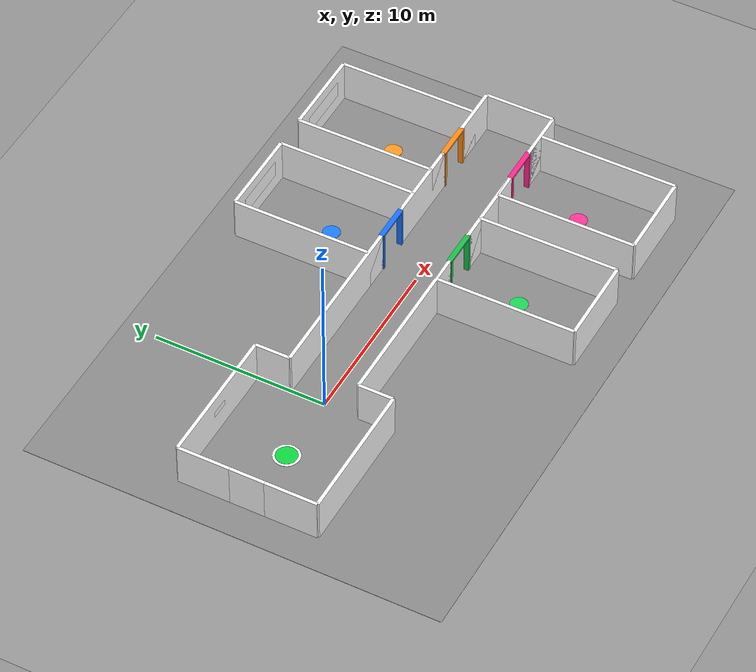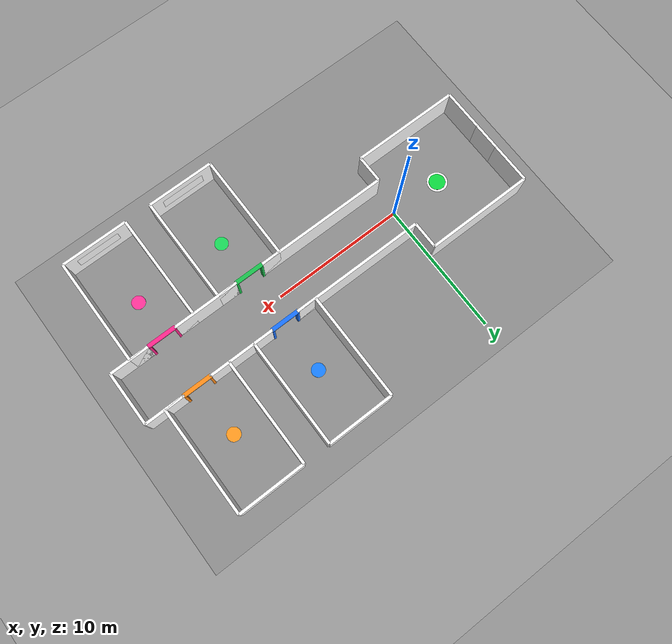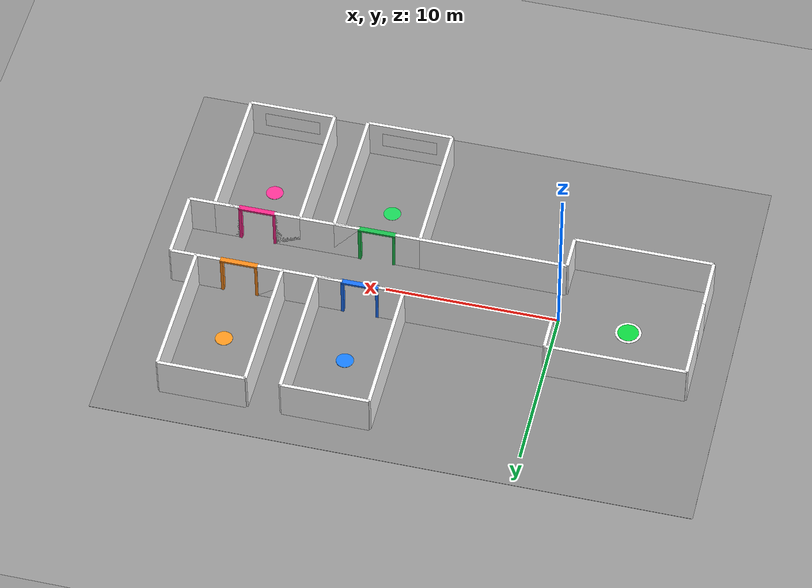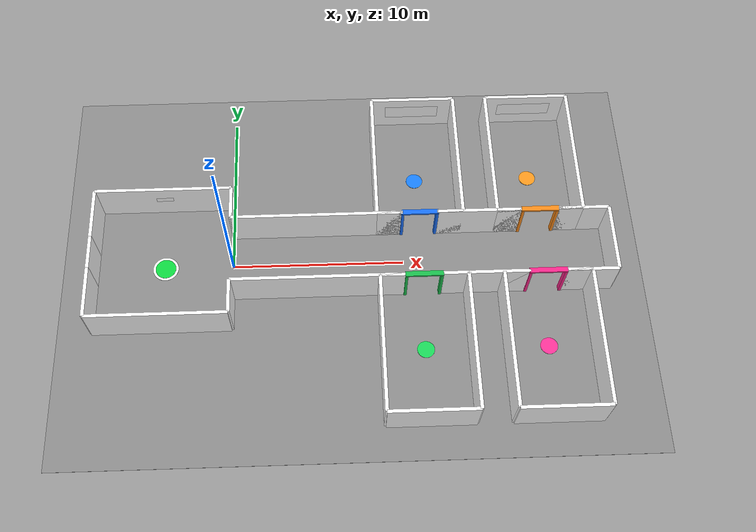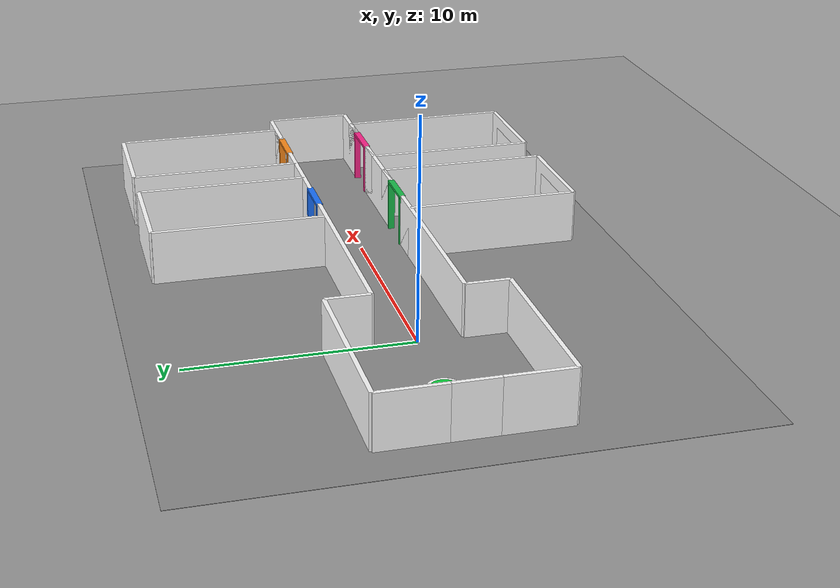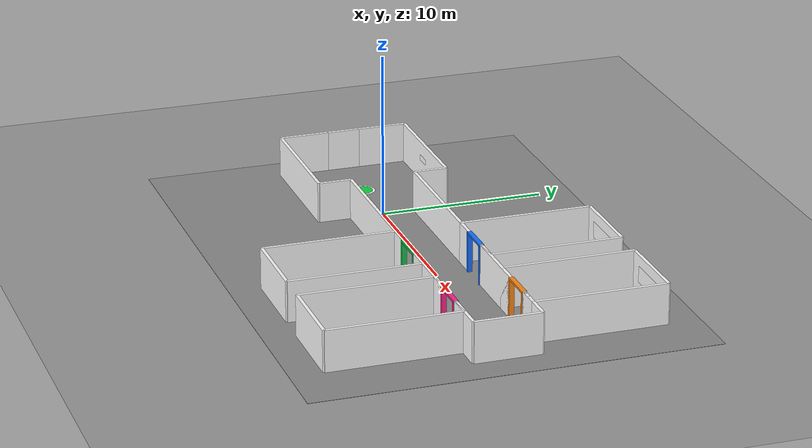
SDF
<sdf version="1.9">
 <world name="default">
  <model name="ground_plane">
   <static>1</static>
   <link name="link">
    <collision name="collision">
     <geometry><plane><normal>0 0 1</normal><size>100 100</size></plane></geometry>
     <surface>
      <contact><collide_bitmask>65535</collide_bitmask></contact>
      <friction><ode><mu>100</mu><mu2>50</mu2></ode></friction>
     </surface>
    </collision>
    <visual name="visual">
     <cast_shadows>0</cast_shadows>
     <geometry><plane><normal>0 0 1</normal><size>100 100</size></plane></geometry>
     <material><ambient>0.6 0.6 0.6 1</ambient><diffuse>0.6 0.6 0.6 1</diffuse></material>
    </visual>
   </link>
  </model>
  <model name="corridor_rooms">
   <static>true</static>
   <link name="link">
    <collision name="floor_col">
     <pose>7.0 0 0.01 0 0 0</pose>
     <geometry><box><size>34.0 24.0 0.02</size></box></geometry>
    </collision>
    <visual name="floor_vis">
     <pose>7.0 0 0.01 0 0 0</pose>
     <geometry><box><size>34.0 24.0 0.02</size></box></geometry>
     <material><ambient>0.55 0.55 0.55 1</ambient><diffuse>0.55 0.55 0.55 1</diffuse></material>
    </visual>
    <collision name="lobby_north_col">
     <pose>-4.0 4.0 1.25 0 0 0.0</pose>
     <geometry><box><size>8.0 0.2 2.5</size></box></geometry>
    </collision>
    <visual name="lobby_north_vis">
     <pose>-4.0 4.0 1.25 0 0 0.0</pose>
     <geometry><box><size>8.0 0.2 2.5</size></box></geometry>
     <material>
      <ambient>1 1 1 1</ambient>
      <diffuse>1 1 1 1</diffuse>
      <pbr>
       <metal>
        <albedo_map>materials/textures/wall.png</albedo_map>
        <metalness>0</metalness>
        <roughness>1</roughness>
       </metal>
      </pbr>
     </material>
    </visual>
    <collision name="lobby_south_col">
     <pose>-4.0 -4.0 1.25 0 0 0.0</pose>
     <geometry><box><size>8.0 0.2 2.5</size></box></geometry>
    </collision>
    <visual name="lobby_south_vis">
     <pose>-4.0 -4.0 1.25 0 0 0.0</pose>
     <geometry><box><size>8.0 0.2 2.5</size></box></geometry>
     <material>
      <ambient>1 1 1 1</ambient>
      <diffuse>1 1 1 1</diffuse>
      <pbr>
       <metal>
        <albedo_map>materials/textures/wall.png</albedo_map>
        <metalness>0</metalness>
        <roughness>1</roughness>
       </metal>
      </pbr>
     </material>
    </visual>
    <collision name="lobby_west_a_col">
     <pose>-8.0 2.5 1.25 0 0 0.0</pose>
     <geometry><box><size>0.2 3.0 2.5</size></box></geometry>
    </collision>
    <visual name="lobby_west_a_vis">
     <pose>-8.0 2.5 1.25 0 0 0.0</pose>
     <geometry><box><size>0.2 3.0 2.5</size></box></geometry>
     <material>
      <ambient>1 1 1 1</ambient>
      <diffuse>1 1 1 1</diffuse>
      <pbr>
       <metal>
        <albedo_map>materials/textures/wall.png</albedo_map>
        <metalness>0</metalness>
        <roughness>1</roughness>
       </metal>
      </pbr>
     </material>
    </visual>
    <collision name="lobby_west_b_col">
     <pose>-8.0 -2.5 1.25 0 0 0.0</pose>
     <geometry><box><size>0.2 3.0 2.5</size></box></geometry>
    </collision>
    <visual name="lobby_west_b_vis">
     <pose>-8.0 -2.5 1.25 0 0 0.0</pose>
     <geometry><box><size>0.2 3.0 2.5</size></box></geometry>
     <material>
      <ambient>1 1 1 1</ambient>
      <diffuse>1 1 1 1</diffuse>
      <pbr>
       <metal>
        <albedo_map>materials/textures/wall.png</albedo_map>
        <metalness>0</metalness>
        <roughness>1</roughness>
       </metal>
      </pbr>
     </material>
    </visual>
    <collision name="lobby_west_entrance_col">
     <pose>-8.0 0.0 1.25 0 0 0.0</pose>
     <geometry><box><size>0.2 2.0 2.5</size></box></geometry>
    </collision>
    <visual name="lobby_west_entrance_vis">
     <pose>-8.0 0.0 1.25 0 0 0.0</pose>
     <geometry><box><size>0.2 2.0 2.5</size></box></geometry>
     <material>
      <ambient>1 1 1 1</ambient>
      <diffuse>1 1 1 1</diffuse>
      <pbr>
       <metal>
        <albedo_map>materials/textures/wall.png</albedo_map>
        <metalness>0</metalness>
        <roughness>1</roughness>
       </metal>
      </pbr>
     </material>
    </visual>
    <collision name="lobby_east_a_col">
     <pose>0.0 3.0 1.25 0 0 0.0</pose>
     <geometry><box><size>0.2 2.0 2.5</size></box></geometry>
    </collision>
    <visual name="lobby_east_a_vis">
     <pose>0.0 3.0 1.25 0 0 0.0</pose>
     <geometry><box><size>0.2 2.0 2.5</size></box></geometry>
     <material>
      <ambient>1 1 1 1</ambient>
      <diffuse>1 1 1 1</diffuse>
      <pbr>
       <metal>
        <albedo_map>materials/textures/wall.png</albedo_map>
        <metalness>0</metalness>
        <roughness>1</roughness>
       </metal>
      </pbr>
     </material>
    </visual>
    <collision name="lobby_east_b_col">
     <pose>0.0 -3.0 1.25 0 0 0.0</pose>
     <geometry><box><size>0.2 2.0 2.5</size></box></geometry>
    </collision>
    <visual name="lobby_east_b_vis">
     <pose>0.0 -3.0 1.25 0 0 0.0</pose>
     <geometry><box><size>0.2 2.0 2.5</size></box></geometry>
     <material>
      <ambient>1 1 1 1</ambient>
      <diffuse>1 1 1 1</diffuse>
      <pbr>
       <metal>
        <albedo_map>materials/textures/wall.png</albedo_map>
        <metalness>0</metalness>
        <roughness>1</roughness>
       </metal>
      </pbr>
     </material>
    </visual>
    <collision name="corridor_north_0_col">
     <pose>5.0 2.0 1.25 0 0 0.0</pose>
     <geometry><box><size>10.0 0.2 2.5</size></box></geometry>
    </collision>
    <visual name="corridor_north_0_vis">
     <pose>5.0 2.0 1.25 0 0 0.0</pose>
     <geometry><box><size>10.0 0.2 2.5</size></box></geometry>
     <material>
      <ambient>1 1 1 1</ambient>
      <diffuse>1 1 1 1</diffuse>
      <pbr>
       <metal>
        <albedo_map>materials/textures/wall.png</albedo_map>
        <metalness>0</metalness>
        <roughness>1</roughness>
       </metal>
      </pbr>
     </material>
    </visual>
    <collision name="corridor_north_1_col">
     <pose>14.5 2.0 1.25 0 0 0.0</pose>
     <geometry><box><size>5.0 0.2 2.5</size></box></geometry>
    </collision>
    <visual name="corridor_north_1_vis">
     <pose>14.5 2.0 1.25 0 0 0.0</pose>
     <geometry><box><size>5.0 0.2 2.5</size></box></geometry>
     <material>
      <ambient>1 1 1 1</ambient>
      <diffuse>1 1 1 1</diffuse>
      <pbr>
       <metal>
        <albedo_map>materials/textures/wall.png</albedo_map>
        <metalness>0</metalness>
        <roughness>1</roughness>
       </metal>
      </pbr>
     </material>
    </visual>
    <collision name="corridor_north_2_col">
     <pose>20.5 2.0 1.25 0 0 0.0</pose>
     <geometry><box><size>3.0 0.2 2.5</size></box></geometry>
    </collision>
    <visual name="corridor_north_2_vis">
     <pose>20.5 2.0 1.25 0 0 0.0</pose>
     <geometry><box><size>3.0 0.2 2.5</size></box></geometry>
     <material>
      <ambient>1 1 1 1</ambient>
      <diffuse>1 1 1 1</diffuse>
      <pbr>
       <metal>
        <albedo_map>materials/textures/wall.png</albedo_map>
        <metalness>0</metalness>
        <roughness>1</roughness>
       </metal>
      </pbr>
     </material>
    </visual>
    <collision name="corridor_south_0_col">
     <pose>5.0 -2.0 1.25 0 0 0.0</pose>
     <geometry><box><size>10.0 0.2 2.5</size></box></geometry>
    </collision>
    <visual name="corridor_south_0_vis">
     <pose>5.0 -2.0 1.25 0 0 0.0</pose>
     <geometry><box><size>10.0 0.2 2.5</size></box></geometry>
     <material>
      <ambient>1 1 1 1</ambient>
      <diffuse>1 1 1 1</diffuse>
      <pbr>
       <metal>
        <albedo_map>materials/textures/wall.png</albedo_map>
        <metalness>0</metalness>
        <roughness>1</roughness>
       </metal>
      </pbr>
     </material>
    </visual>
    <collision name="corridor_south_1_col">
     <pose>14.5 -2.0 1.25 0 0 0.0</pose>
     <geometry><box><size>5.0 0.2 2.5</size></box></geometry>
    </collision>
    <visual name="corridor_south_1_vis">
     <pose>14.5 -2.0 1.25 0 0 0.0</pose>
     <geometry><box><size>5.0 0.2 2.5</size></box></geometry>
     <material>
      <ambient>1 1 1 1</ambient>
      <diffuse>1 1 1 1</diffuse>
      <pbr>
       <metal>
        <albedo_map>materials/textures/wall.png</albedo_map>
        <metalness>0</metalness>
        <roughness>1</roughness>
       </metal>
      </pbr>
     </material>
    </visual>
    <collision name="corridor_south_2_col">
     <pose>20.5 -2.0 1.25 0 0 0.0</pose>
     <geometry><box><size>3.0 0.2 2.5</size></box></geometry>
    </collision>
    <visual name="corridor_south_2_vis">
     <pose>20.5 -2.0 1.25 0 0 0.0</pose>
     <geometry><box><size>3.0 0.2 2.5</size></box></geometry>
     <material>
      <ambient>1 1 1 1</ambient>
      <diffuse>1 1 1 1</diffuse>
      <pbr>
       <metal>
        <albedo_map>materials/textures/wall.png</albedo_map>
        <metalness>0</metalness>
        <roughness>1</roughness>
       </metal>
      </pbr>
     </material>
    </visual>
    <collision name="corridor_east_end_col">
     <pose>22.0 0.0 1.25 0 0 0.0</pose>
     <geometry><box><size>0.2 4.0 2.5</size></box></geometry>
    </collision>
    <visual name="corridor_east_end_vis">
     <pose>22.0 0.0 1.25 0 0 0.0</pose>
     <geometry><box><size>0.2 4.0 2.5</size></box></geometry>
     <material>
      <ambient>1 1 1 1</ambient>
      <diffuse>1 1 1 1</diffuse>
      <pbr>
       <metal>
        <albedo_map>materials/textures/wall.png</albedo_map>
        <metalness>0</metalness>
        <roughness>1</roughness>
       </metal>
      </pbr>
     </material>
    </visual>
    <collision name="room_A_doorwall_a_col">
     <pose>9.25 2.0 1.25 0 0 0.0</pose>
     <geometry><box><size>1.5 0.2 2.5</size></box></geometry>
    </collision>
    <visual name="room_A_doorwall_a_vis">
     <pose>9.25 2.0 1.25 0 0 0.0</pose>
     <geometry><box><size>1.5 0.2 2.5</size></box></geometry>
     <material>
      <ambient>1 1 1 1</ambient>
      <diffuse>1 1 1 1</diffuse>
      <pbr>
       <metal>
        <albedo_map>materials/textures/wall.png</albedo_map>
        <metalness>0</metalness>
        <roughness>1</roughness>
       </metal>
      </pbr>
     </material>
    </visual>
    <collision name="room_A_doorwall_b_col">
     <pose>12.75 2.0 1.25 0 0 0.0</pose>
     <geometry><box><size>1.5 0.2 2.5</size></box></geometry>
    </collision>
    <visual name="room_A_doorwall_b_vis">
     <pose>12.75 2.0 1.25 0 0 0.0</pose>
     <geometry><box><size>1.5 0.2 2.5</size></box></geometry>
     <material>
      <ambient>1 1 1 1</ambient>
      <diffuse>1 1 1 1</diffuse>
      <pbr>
       <metal>
        <albedo_map>materials/textures/wall.png</albedo_map>
        <metalness>0</metalness>
        <roughness>1</roughness>
       </metal>
      </pbr>
     </material>
    </visual>
    <collision name="room_A_backwall_col">
     <pose>11.0 10.0 1.25 0 0 0.0</pose>
     <geometry><box><size>5.0 0.2 2.5</size></box></geometry>
    </collision>
    <visual name="room_A_backwall_vis">
     <pose>11.0 10.0 1.25 0 0 0.0</pose>
     <geometry><box><size>5.0 0.2 2.5</size></box></geometry>
     <material>
      <ambient>1 1 1 1</ambient>
      <diffuse>1 1 1 1</diffuse>
      <pbr>
       <metal>
        <albedo_map>materials/textures/wall.png</albedo_map>
        <metalness>0</metalness>
        <roughness>1</roughness>
       </metal>
      </pbr>
     </material>
    </visual>
    <collision name="room_A_sidewall_1_col">
     <pose>8.5 6.0 1.25 0 0 0.0</pose>
     <geometry><box><size>0.2 8.0 2.5</size></box></geometry>
    </collision>
    <visual name="room_A_sidewall_1_vis">
     <pose>8.5 6.0 1.25 0 0 0.0</pose>
     <geometry><box><size>0.2 8.0 2.5</size></box></geometry>
     <material>
      <ambient>1 1 1 1</ambient>
      <diffuse>1 1 1 1</diffuse>
      <pbr>
       <metal>
        <albedo_map>materials/textures/wall.png</albedo_map>
        <metalness>0</metalness>
        <roughness>1</roughness>
       </metal>
      </pbr>
     </material>
    </visual>
    <collision name="room_A_sidewall_2_col">
     <pose>13.5 6.0 1.25 0 0 0.0</pose>
     <geometry><box><size>0.2 8.0 2.5</size></box></geometry>
    </collision>
    <visual name="room_A_sidewall_2_vis">
     <pose>13.5 6.0 1.25 0 0 0.0</pose>
     <geometry><box><size>0.2 8.0 2.5</size></box></geometry>
     <material>
      <ambient>1 1 1 1</ambient>
      <diffuse>1 1 1 1</diffuse>
      <pbr>
       <metal>
        <albedo_map>materials/textures/wall.png</albedo_map>
        <metalness>0</metalness>
        <roughness>1</roughness>
       </metal>
      </pbr>
     </material>
    </visual>
    <collision name="room_B_doorwall_a_col">
     <pose>9.25 -2.0 1.25 0 0 0.0</pose>
     <geometry><box><size>1.5 0.2 2.5</size></box></geometry>
    </collision>
    <visual name="room_B_doorwall_a_vis">
     <pose>9.25 -2.0 1.25 0 0 0.0</pose>
     <geometry><box><size>1.5 0.2 2.5</size></box></geometry>
     <material>
      <ambient>1 1 1 1</ambient>
      <diffuse>1 1 1 1</diffuse>
      <pbr>
       <metal>
        <albedo_map>materials/textures/wall.png</albedo_map>
        <metalness>0</metalness>
        <roughness>1</roughness>
       </metal>
      </pbr>
     </material>
    </visual>
    <collision name="room_B_doorwall_b_col">
     <pose>12.75 -2.0 1.25 0 0 0.0</pose>
     <geometry><box><size>1.5 0.2 2.5</size></box></geometry>
    </collision>
    <visual name="room_B_doorwall_b_vis">
     <pose>12.75 -2.0 1.25 0 0 0.0</pose>
     <geometry><box><size>1.5 0.2 2.5</size></box></geometry>
     <material>
      <ambient>1 1 1 1</ambient>
      <diffuse>1 1 1 1</diffuse>
      <pbr>
       <metal>
        <albedo_map>materials/textures/wall.png</albedo_map>
        <metalness>0</metalness>
        <roughness>1</roughness>
       </metal>
      </pbr>
     </material>
    </visual>
    <collision name="room_B_backwall_col">
     <pose>11.0 -10.0 1.25 0 0 0.0</pose>
     <geometry><box><size>5.0 0.2 2.5</size></box></geometry>
    </collision>
    <visual name="room_B_backwall_vis">
     <pose>11.0 -10.0 1.25 0 0 0.0</pose>
     <geometry><box><size>5.0 0.2 2.5</size></box></geometry>
     <material>
      <ambient>1 1 1 1</ambient>
      <diffuse>1 1 1 1</diffuse>
      <pbr>
       <metal>
        <albedo_map>materials/textures/wall.png</albedo_map>
        <metalness>0</metalness>
        <roughness>1</roughness>
       </metal>
      </pbr>
     </material>
    </visual>
    <collision name="room_B_sidewall_1_col">
     <pose>8.5 -6.0 1.25 0 0 0.0</pose>
     <geometry><box><size>0.2 8.0 2.5</size></box></geometry>
    </collision>
    <visual name="room_B_sidewall_1_vis">
     <pose>8.5 -6.0 1.25 0 0 0.0</pose>
     <geometry><box><size>0.2 8.0 2.5</size></box></geometry>
     <material>
      <ambient>1 1 1 1</ambient>
      <diffuse>1 1 1 1</diffuse>
      <pbr>
       <metal>
        <albedo_map>materials/textures/wall.png</albedo_map>
        <metalness>0</metalness>
        <roughness>1</roughness>
       </metal>
      </pbr>
     </material>
    </visual>
    <collision name="room_B_sidewall_2_col">
     <pose>13.5 -6.0 1.25 0 0 0.0</pose>
     <geometry><box><size>0.2 8.0 2.5</size></box></geometry>
    </collision>
    <visual name="room_B_sidewall_2_vis">
     <pose>13.5 -6.0 1.25 0 0 0.0</pose>
     <geometry><box><size>0.2 8.0 2.5</size></box></geometry>
     <material>
      <ambient>1 1 1 1</ambient>
      <diffuse>1 1 1 1</diffuse>
      <pbr>
       <metal>
        <albedo_map>materials/textures/wall.png</albedo_map>
        <metalness>0</metalness>
        <roughness>1</roughness>
       </metal>
      </pbr>
     </material>
    </visual>
    <collision name="room_C_doorwall_a_col">
     <pose>16.25 2.0 1.25 0 0 0.0</pose>
     <geometry><box><size>1.5 0.2 2.5</size></box></geometry>
    </collision>
    <visual name="room_C_doorwall_a_vis">
     <pose>16.25 2.0 1.25 0 0 0.0</pose>
     <geometry><box><size>1.5 0.2 2.5</size></box></geometry>
     <material>
      <ambient>1 1 1 1</ambient>
      <diffuse>1 1 1 1</diffuse>
      <pbr>
       <metal>
        <albedo_map>materials/textures/wall.png</albedo_map>
        <metalness>0</metalness>
        <roughness>1</roughness>
       </metal>
      </pbr>
     </material>
    </visual>
    <collision name="room_C_doorwall_b_col">
     <pose>19.75 2.0 1.25 0 0 0.0</pose>
     <geometry><box><size>1.5 0.2 2.5</size></box></geometry>
    </collision>
    <visual name="room_C_doorwall_b_vis">
     <pose>19.75 2.0 1.25 0 0 0.0</pose>
     <geometry><box><size>1.5 0.2 2.5</size></box></geometry>
     <material>
      <ambient>1 1 1 1</ambient>
      <diffuse>1 1 1 1</diffuse>
      <pbr>
       <metal>
        <albedo_map>materials/textures/wall.png</albedo_map>
        <metalness>0</metalness>
        <roughness>1</roughness>
       </metal>
      </pbr>
     </material>
    </visual>
    <collision name="room_C_backwall_col">
     <pose>18.0 10.0 1.25 0 0 0.0</pose>
     <geometry><box><size>5.0 0.2 2.5</size></box></geometry>
    </collision>
    <visual name="room_C_backwall_vis">
     <pose>18.0 10.0 1.25 0 0 0.0</pose>
     <geometry><box><size>5.0 0.2 2.5</size></box></geometry>
     <material>
      <ambient>1 1 1 1</ambient>
      <diffuse>1 1 1 1</diffuse>
      <pbr>
       <metal>
        <albedo_map>materials/textures/wall.png</albedo_map>
        <metalness>0</metalness>
        <roughness>1</roughness>
       </metal>
      </pbr>
     </material>
    </visual>
    <collision name="room_C_sidewall_1_col">
     <pose>15.5 6.0 1.25 0 0 0.0</pose>
     <geometry><box><size>0.2 8.0 2.5</size></box></geometry>
    </collision>
    <visual name="room_C_sidewall_1_vis">
     <pose>15.5 6.0 1.25 0 0 0.0</pose>
     <geometry><box><size>0.2 8.0 2.5</size></box></geometry>
     <material>
      <ambient>1 1 1 1</ambient>
      <diffuse>1 1 1 1</diffuse>
      <pbr>
       <metal>
        <albedo_map>materials/textures/wall.png</albedo_map>
        <metalness>0</metalness>
        <roughness>1</roughness>
       </metal>
      </pbr>
     </material>
    </visual>
    <collision name="room_C_sidewall_2_col">
     <pose>20.5 6.0 1.25 0 0 0.0</pose>
     <geometry><box><size>0.2 8.0 2.5</size></box></geometry>
    </collision>
    <visual name="room_C_sidewall_2_vis">
     <pose>20.5 6.0 1.25 0 0 0.0</pose>
     <geometry><box><size>0.2 8.0 2.5</size></box></geometry>
     <material>
      <ambient>1 1 1 1</ambient>
      <diffuse>1 1 1 1</diffuse>
      <pbr>
       <metal>
        <albedo_map>materials/textures/wall.png</albedo_map>
        <metalness>0</metalness>
        <roughness>1</roughness>
       </metal>
      </pbr>
     </material>
    </visual>
    <collision name="room_D_doorwall_a_col">
     <pose>16.25 -2.0 1.25 0 0 0.0</pose>
     <geometry><box><size>1.5 0.2 2.5</size></box></geometry>
    </collision>
    <visual name="room_D_doorwall_a_vis">
     <pose>16.25 -2.0 1.25 0 0 0.0</pose>
     <geometry><box><size>1.5 0.2 2.5</size></box></geometry>
     <material>
      <ambient>1 1 1 1</ambient>
      <diffuse>1 1 1 1</diffuse>
      <pbr>
       <metal>
        <albedo_map>materials/textures/wall.png</albedo_map>
        <metalness>0</metalness>
        <roughness>1</roughness>
       </metal>
      </pbr>
     </material>
    </visual>
    <collision name="room_D_doorwall_b_col">
     <pose>19.75 -2.0 1.25 0 0 0.0</pose>
     <geometry><box><size>1.5 0.2 2.5</size></box></geometry>
    </collision>
    <visual name="room_D_doorwall_b_vis">
     <pose>19.75 -2.0 1.25 0 0 0.0</pose>
     <geometry><box><size>1.5 0.2 2.5</size></box></geometry>
     <material>
      <ambient>1 1 1 1</ambient>
      <diffuse>1 1 1 1</diffuse>
      <pbr>
       <metal>
        <albedo_map>materials/textures/wall.png</albedo_map>
        <metalness>0</metalness>
        <roughness>1</roughness>
       </metal>
      </pbr>
     </material>
    </visual>
    <collision name="room_D_backwall_col">
     <pose>18.0 -10.0 1.25 0 0 0.0</pose>
     <geometry><box><size>5.0 0.2 2.5</size></box></geometry>
    </collision>
    <visual name="room_D_backwall_vis">
     <pose>18.0 -10.0 1.25 0 0 0.0</pose>
     <geometry><box><size>5.0 0.2 2.5</size></box></geometry>
     <material>
      <ambient>1 1 1 1</ambient>
      <diffuse>1 1 1 1</diffuse>
      <pbr>
       <metal>
        <albedo_map>materials/textures/wall.png</albedo_map>
        <metalness>0</metalness>
        <roughness>1</roughness>
       </metal>
      </pbr>
     </material>
    </visual>
    <collision name="room_D_sidewall_1_col">
     <pose>15.5 -6.0 1.25 0 0 0.0</pose>
     <geometry><box><size>0.2 8.0 2.5</size></box></geometry>
    </collision>
    <visual name="room_D_sidewall_1_vis">
     <pose>15.5 -6.0 1.25 0 0 0.0</pose>
     <geometry><box><size>0.2 8.0 2.5</size></box></geometry>
     <material>
      <ambient>1 1 1 1</ambient>
      <diffuse>1 1 1 1</diffuse>
      <pbr>
       <metal>
        <albedo_map>materials/textures/wall.png</albedo_map>
        <metalness>0</metalness>
        <roughness>1</roughness>
       </metal>
      </pbr>
     </material>
    </visual>
    <collision name="room_D_sidewall_2_col">
     <pose>20.5 -6.0 1.25 0 0 0.0</pose>
     <geometry><box><size>0.2 8.0 2.5</size></box></geometry>
    </collision>
    <visual name="room_D_sidewall_2_vis">
     <pose>20.5 -6.0 1.25 0 0 0.0</pose>
     <geometry><box><size>0.2 8.0 2.5</size></box></geometry>
     <material>
      <ambient>1 1 1 1</ambient>
      <diffuse>1 1 1 1</diffuse>
      <pbr>
       <metal>
        <albedo_map>materials/textures/wall.png</albedo_map>
        <metalness>0</metalness>
        <roughness>1</roughness>
       </metal>
      </pbr>
     </material>
    </visual>
    <visual name="plate_A_vis">
     <pose>11.0 9.89 1.375 1.5708 0 0.0</pose>
     <geometry><plane><size>3.25 1.0</size></plane></geometry>
     <material>
      <ambient>1 1 1 1</ambient>
      <diffuse>1 1 1 1</diffuse>
      <pbr>
       <metal>
        <albedo_map>materials/textures/sala_a.png</albedo_map>
        <metalness>0.0</metalness>
        <roughness>1.0</roughness>
       </metal>
      </pbr>
     </material>
    </visual>
    <visual name="plate_B_vis">
     <pose>11.0 -9.89 1.375 1.5708 0 3.14159265</pose>
     <geometry><plane><size>3.25 1.0</size></plane></geometry>
     <material>
      <ambient>1 1 1 1</ambient>
      <diffuse>1 1 1 1</diffuse>
      <pbr>
       <metal>
        <albedo_map>materials/textures/sala_b.png</albedo_map>
        <metalness>0.0</metalness>
        <roughness>1.0</roughness>
       </metal>
      </pbr>
     </material>
    </visual>
    <visual name="plate_C_vis">
     <pose>18.0 9.89 1.375 1.5708 0 0.0</pose>
     <geometry><plane><size>3.25 1.0</size></plane></geometry>
     <material>
      <ambient>1 1 1 1</ambient>
      <diffuse>1 1 1 1</diffuse>
      <pbr>
       <metal>
        <albedo_map>materials/textures/sala_c.png</albedo_map>
        <metalness>0.0</metalness>
        <roughness>1.0</roughness>
       </metal>
      </pbr>
     </material>
    </visual>
    <visual name="plate_D_vis">
     <pose>18.0 -9.89 1.375 1.5708 0 3.14159265</pose>
     <geometry><plane><size>3.25 1.0</size></plane></geometry>
     <material>
      <ambient>1 1 1 1</ambient>
      <diffuse>1 1 1 1</diffuse>
      <pbr>
       <metal>
        <albedo_map>materials/textures/sala_d.png</albedo_map>
        <metalness>0.0</metalness>
        <roughness>1.0</roughness>
       </metal>
      </pbr>
     </material>
    </visual>
   </link>
  </model>
  <model name="checkpoint_a">
   <static>true</static>
   <link name="link">
    <visual name="vis">
     <pose>11 5.6 0.02 0 0 0</pose>
     <geometry><cylinder><radius>0.5</radius><length>0.04</length></cylinder></geometry>
     <material>
      <ambient>0.10 0.45 1.00 1</ambient>
      <diffuse>0.10 0.50 1.00 1</diffuse>
      <emissive>0.05 0.22 0.55 1</emissive>
     </material>
    </visual>
   </link>
  </model>
  <model name="checkpoint_b">
   <static>true</static>
   <link name="link">
    <visual name="vis">
     <pose>11 -5.6 0.02 0 0 0</pose>
     <geometry><cylinder><radius>0.5</radius><length>0.04</length></cylinder></geometry>
     <material>
      <ambient>0.10 0.75 0.30 1</ambient>
      <diffuse>0.10 0.85 0.35 1</diffuse>
      <emissive>0.05 0.40 0.16 1</emissive>
     </material>
    </visual>
   </link>
  </model>
  <model name="checkpoint_c">
   <static>true</static>
   <link name="link">
    <visual name="vis">
     <pose>18 5.6 0.02 0 0 0</pose>
     <geometry><cylinder><radius>0.5</radius><length>0.04</length></cylinder></geometry>
     <material>
      <ambient>1.00 0.55 0.10 1</ambient>
      <diffuse>1.00 0.60 0.12 1</diffuse>
      <emissive>0.50 0.28 0.05 1</emissive>
     </material>
    </visual>
   </link>
  </model>
  <model name="checkpoint_d">
   <static>true</static>
   <link name="link">
    <visual name="vis">
     <pose>18 -5.6 0.02 0 0 0</pose>
     <geometry><cylinder><radius>0.5</radius><length>0.04</length></cylinder></geometry>
     <material>
      <ambient>1.00 0.15 0.55 1</ambient>
      <diffuse>1.00 0.20 0.60 1</diffuse>
      <emissive>0.50 0.08 0.28 1</emissive>
     </material>
    </visual>
   </link>
  </model>
  <model name="home_base">
   <static>true</static>
   <link name="link">
    <visual name="disk">
     <pose>-4.0 0 0.02 0 0 0</pose>
     <geometry><cylinder><radius>0.6</radius><length>0.04</length></cylinder></geometry>
     <material>
      <ambient>0.05 0.75 0.2 1</ambient>
      <diffuse>0.05 0.85 0.25 1</diffuse>
      <emissive>0.02 0.3 0.08 1</emissive>
     </material>
    </visual>
    <visual name="ring">
     <pose>-4.0 0 0.015 0 0 0</pose>
     <geometry><cylinder><radius>0.75</radius><length>0.03</length></cylinder></geometry>
     <material><ambient>0.95 0.95 0.95 1</ambient><diffuse>1 1 1 1</diffuse></material>
    </visual>
   </link>
  </model>
  <model name="deco_arco_A">
   <static>true</static>
   <link name="link">
    <visual name="jamb_l">
     <pose>10.0 2.0 1.19 0 0 0</pose>
     <geometry><box><size>0.16 0.30 2.38</size></box></geometry>
     <material><ambient>0.10 0.45 1.00 1</ambient><diffuse>0.10 0.45 1.00 1</diffuse></material>
    </visual>
    <visual name="jamb_r">
     <pose>12.0 2.0 1.19 0 0 0</pose>
     <geometry><box><size>0.16 0.30 2.38</size></box></geometry>
     <material><ambient>0.10 0.45 1.00 1</ambient><diffuse>0.10 0.45 1.00 1</diffuse></material>
    </visual>
    <visual name="lintel">
     <pose>11.0 2.0 2.44 0 0 0</pose>
     <geometry><box><size>2.16 0.30 0.12</size></box></geometry>
     <material>
      <ambient>0.10 0.45 1.00 1</ambient>
      <diffuse>0.10 0.45 1.00 1</diffuse>
      <emissive>0.04 0.18 0.40 1</emissive>
     </material>
    </visual>
   </link>
  </model>
  <model name="deco_arco_B">
   <static>true</static>
   <link name="link">
    <visual name="jamb_l">
     <pose>10.0 -2.0 1.19 0 0 0</pose>
     <geometry><box><size>0.16 0.30 2.38</size></box></geometry>
     <material><ambient>0.10 0.75 0.30 1</ambient><diffuse>0.10 0.75 0.30 1</diffuse></material>
    </visual>
    <visual name="jamb_r">
     <pose>12.0 -2.0 1.19 0 0 0</pose>
     <geometry><box><size>0.16 0.30 2.38</size></box></geometry>
     <material><ambient>0.10 0.75 0.30 1</ambient><diffuse>0.10 0.75 0.30 1</diffuse></material>
    </visual>
    <visual name="lintel">
     <pose>11.0 -2.0 2.44 0 0 0</pose>
     <geometry><box><size>2.16 0.30 0.12</size></box></geometry>
     <material>
      <ambient>0.10 0.75 0.30 1</ambient>
      <diffuse>0.10 0.75 0.30 1</diffuse>
      <emissive>0.04 0.30 0.12 1</emissive>
     </material>
    </visual>
   </link>
  </model>
  <model name="deco_arco_C">
   <static>true</static>
   <link name="link">
    <visual name="jamb_l">
     <pose>17.0 2.0 1.19 0 0 0</pose>
     <geometry><box><size>0.16 0.30 2.38</size></box></geometry>
     <material><ambient>1.00 0.55 0.10 1</ambient><diffuse>1.00 0.55 0.10 1</diffuse></material>
    </visual>
    <visual name="jamb_r">
     <pose>19.0 2.0 1.19 0 0 0</pose>
     <geometry><box><size>0.16 0.30 2.38</size></box></geometry>
     <material><ambient>1.00 0.55 0.10 1</ambient><diffuse>1.00 0.55 0.10 1</diffuse></material>
    </visual>
    <visual name="lintel">
     <pose>18.0 2.0 2.44 0 0 0</pose>
     <geometry><box><size>2.16 0.30 0.12</size></box></geometry>
     <material>
      <ambient>1.00 0.55 0.10 1</ambient>
      <diffuse>1.00 0.55 0.10 1</diffuse>
      <emissive>0.40 0.22 0.04 1</emissive>
     </material>
    </visual>
   </link>
  </model>
  <model name="deco_arco_D">
   <static>true</static>
   <link name="link">
    <visual name="jamb_l">
     <pose>17.0 -2.0 1.19 0 0 0</pose>
     <geometry><box><size>0.16 0.30 2.38</size></box></geometry>
     <material><ambient>1.00 0.15 0.55 1</ambient><diffuse>1.00 0.15 0.55 1</diffuse></material>
    </visual>
    <visual name="jamb_r">
     <pose>19.0 -2.0 1.19 0 0 0</pose>
     <geometry><box><size>0.16 0.30 2.38</size></box></geometry>
     <material><ambient>1.00 0.15 0.55 1</ambient><diffuse>1.00 0.15 0.55 1</diffuse></material>
    </visual>
    <visual name="lintel">
     <pose>18.0 -2.0 2.44 0 0 0</pose>
     <geometry><box><size>2.16 0.30 0.12</size></box></geometry>
     <material>
      <ambient>1.00 0.15 0.55 1</ambient>
      <diffuse>1.00 0.15 0.55 1</diffuse>
      <emissive>0.40 0.06 0.22 1</emissive>
     </material>
    </visual>
   </link>
  </model>
  <model name="deco_placa_base">
   <static>true</static>
   <link name="link">
    <visual name="vis">
     <pose>-4.0 3.86 1.55 1.5708 0 0</pose>
     <geometry><plane><size>1.0 0.35</size></plane></geometry>
     <material>
      <ambient>1 1 1 1</ambient>
      <diffuse>1 1 1 1</diffuse>
      <pbr>
       <metal>
        <albedo_map>materials/textures/base.png</albedo_map>
        <metalness>0</metalness>
        <roughness>1</roughness>
       </metal>
      </pbr>
     </material>
    </visual>
   </link>
  </model>
 </world>
</sdf>
